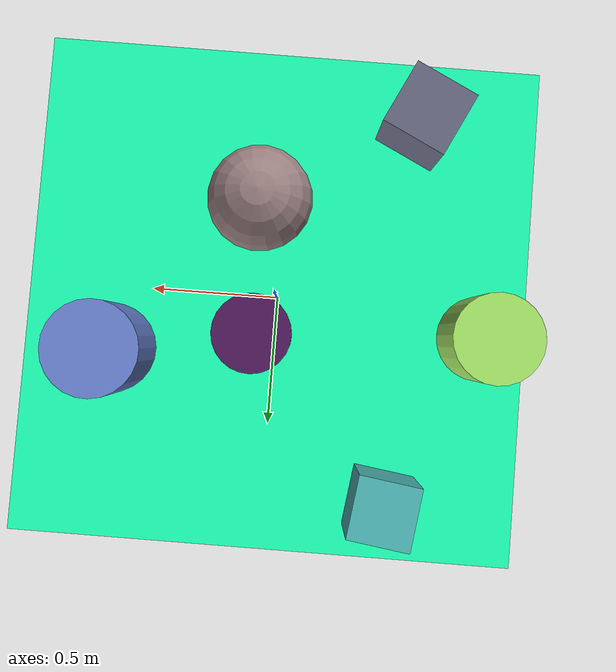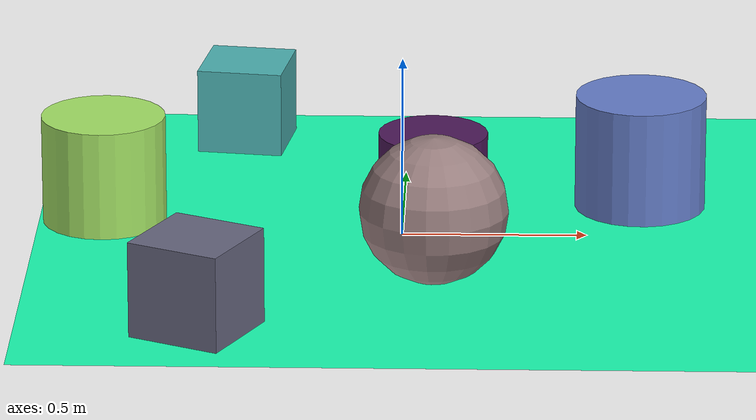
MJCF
<mujoco>
   <asset>
<texture type="skybox" builtin="gradient" rgb1="1.0 0.9 0.5" rgb2="0.7 0.2 0.3" width="256" height="256"/>
<texture name="flat_0" builtin="flat" rgb1="0.4 0.4 0.5" rgb2="0.4 0.4 0.5"  width="200" height="200"/>
<texture name="gradient_1" builtin="gradient" rgb1="0.1 0.0 0.3" rgb2="0.5 0.2 0.4" width="200" height="200"/>
<texture name="flat_2" builtin="flat" rgb1="0.3 0.7 0.7" rgb2="0.3 0.7 0.7"  width="200" height="200"/>
<texture name="checker_3" builtin="checker" rgb1="0.6 0.9 0.6" rgb2="0.7 0.9 0.2" width="200" height="200"/>
<texture name="flat_4" builtin="flat" rgb1="0.4 0.5 0.8" rgb2="0.4 0.5 0.8"  width="200" height="200"/>
<texture name="flat_5" builtin="flat" rgb1="0.6 0.5 0.5" rgb2="0.6 0.5 0.5"  width="200" height="200"/><material name="flat_0_mat" reflectance="0" texture="flat_0" texuniform="true"/>
<material name="gradient_1_mat" reflectance="0" texture="gradient_1" texuniform="true"/>
<material name="flat_2_mat" reflectance="0" texture="flat_2" texuniform="true"/>
<material name="checker_3_mat" reflectance="0" texrepeat="8 8" texture="checker_3" texuniform="false" />
<material name="flat_4_mat" reflectance="0" texture="flat_4" texuniform="true"/>
<material name="flat_5_mat" reflectance="0" texture="flat_5" texuniform="true"/>
   </asset>

   <worldbody>
      <light diffuse=".9 .9 .9" pos="0 0 3" dir="0 0 -1"/>
     <geom type="plane" size="1 1 0.1" rgba="0.1 1.0 0.7 1"/>
<geom type="box" pos="-0.52 -0.74 0.13" size="0.13 0.13 0.13" material="flat_0_mat" euler="0 0 64" />
<geom type="cylinder" pos="0.08 0.15 0.12" size="0.15 0.12 0.12" material="gradient_1_mat" euler="0 0 18" />
<geom type="box" pos="-0.46 0.77 0.12" size="0.12 0.12 0.12" material="flat_2_mat" euler="0 0 82" />
<geom type="cylinder" pos="-0.82 0.1 0.15" size="0.17 0.15 0.15" material="checker_3_mat" euler="0 0 45" />
<geom type="cylinder" pos="0.65 0.25 0.16" size="0.18 0.16 0.16" material="flat_4_mat" euler="0 0 64" />
<geom type="sphere" pos="0.09 -0.36 0.2" size="0.2 0.2 0.2" material="flat_5_mat" euler="0 0 13" /><camera euler="60 0 180" fovy="60" name="camera1" pos="-0.2 -1.5 1"></camera>   </worldbody>
</mujoco>
